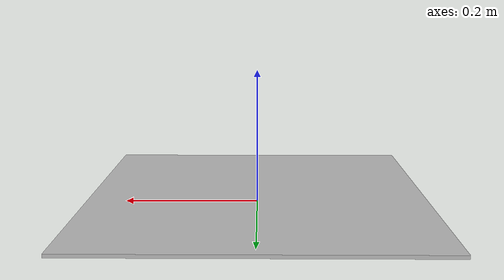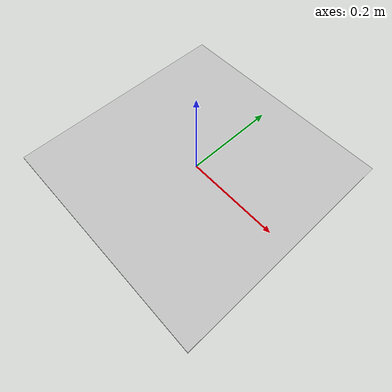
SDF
<?xml version="1.0" ?>
        <sdf version="1.5">
        <model name="DICT_4X4_50_s500_id38">
              <link name="Main">
                <pose>0 0 0 0 0 -1.570796327</pose>
                    <visual name="DICT_4X4_50_s500_id38_Visual">
                        <pose>0 0 0.01 0 0 0</pose>
                        <geometry>
                            <mesh>
                                <scale>1 1 1</scale>
                                <uri>DICT_4X4_50_s500_id38.obj</uri>
                            </mesh>
                        </geometry>
                    </visual>
                    <gravity>1</gravity>
                    <velocity_decay/>
                    <self_collide>0</self_collide>
              </link>
          </model></sdf>
